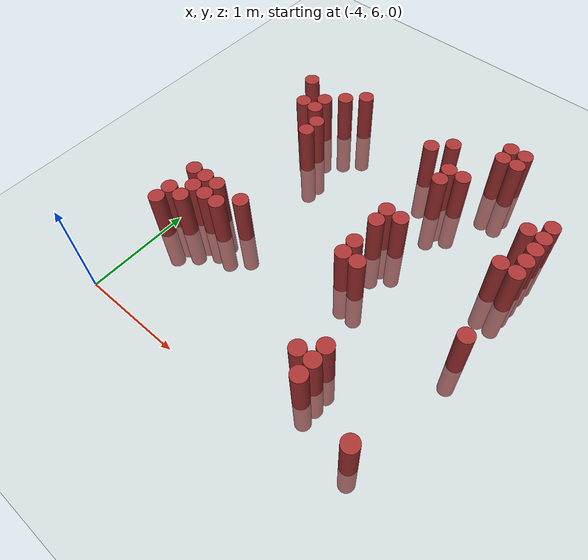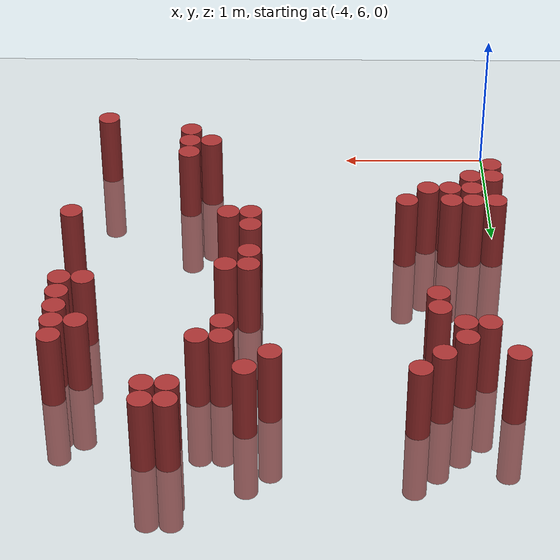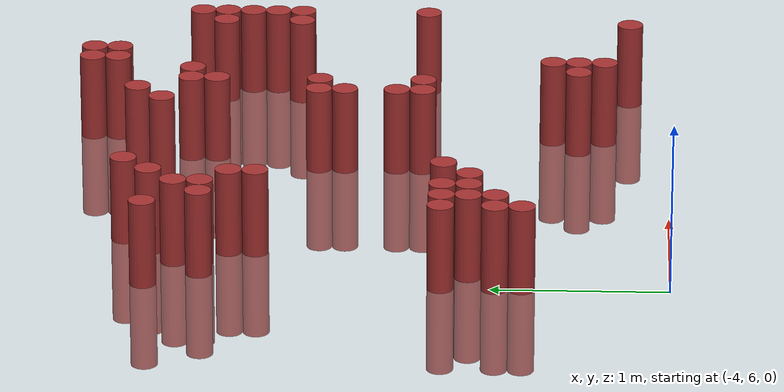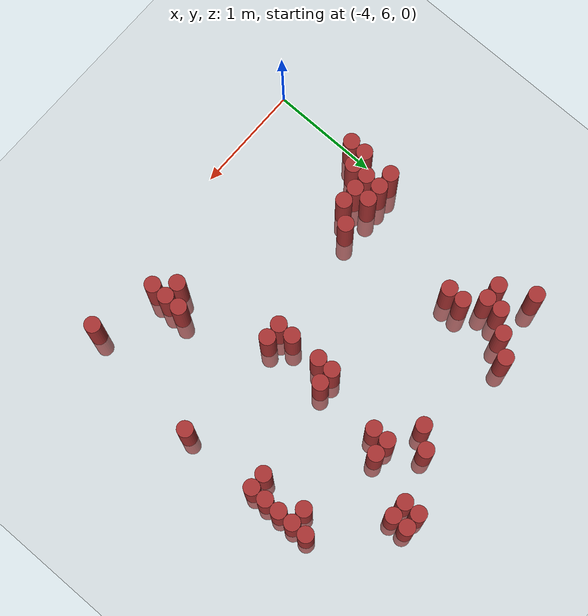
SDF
<sdf version="1.6">
 <world name="world_213">
  <model name="ground_plane">
   <static>1</static>
   <link name="link">
    <collision name="collision">
     <geometry><plane><normal>0 0 1</normal><size>100 100</size></plane></geometry>
     <surface><friction><ode><mu>100</mu><mu2>50</mu2></ode></friction></surface>
    </collision>
    <visual name="visual">
     <cast_shadows>0</cast_shadows>
     <geometry><plane><normal>0 0 1</normal><size>100 100</size></plane></geometry>
     <material>
      <script><uri>file://media/materials/scripts/gazebo.material</uri><name>Gazebo/Grey</name></script>
     </material>
    </visual>
   </link>
  </model>
  <model name="unit_cylinder_153">
   <static>1</static>
   <pose>-3.975000 6.825000 0.000000 0.000000 0.000000 0.000000</pose>
   <link name="link">
    <inertial>
     <mass>1</mass>
     <inertia><ixx>0.145833</ixx><ixy>0</ixy><ixz>0</ixz><iyy>0.145833</iyy><iyz>0</iyz><izz>0.125</izz></inertia>
    </inertial>
    <collision name="collision">
     <geometry><cylinder><radius>0.075000</radius><length>1</length></cylinder></geometry>
    </collision>
    <visual name="visual">
     <geometry><cylinder><radius>0.075000</radius><length>1</length></cylinder></geometry>
     <material>
      <ambient>0.648000 0.192000 0.192000 1</ambient>
      <diffuse>0.648000 0.192000 0.192000 1</diffuse>
     </material>
     <material>
      <script><name>Gazebo/Grey</name><uri>file://media/materials/scripts/gazebo.material</uri></script>
     </material>
    </visual>
   </link>
  </model>
  <model name="unit_cylinder_154">
   <static>1</static>
   <pose>-3.975000 6.975000 0.000000 0.000000 0.000000 0.000000</pose>
   <link name="link">
    <inertial>
     <mass>1</mass>
     <inertia><ixx>0.145833</ixx><ixy>0</ixy><ixz>0</ixz><iyy>0.145833</iyy><iyz>0</iyz><izz>0.125</izz></inertia>
    </inertial>
    <collision name="collision">
     <geometry><cylinder><radius>0.075000</radius><length>1</length></cylinder></geometry>
    </collision>
    <visual name="visual">
     <geometry><cylinder><radius>0.075000</radius><length>1</length></cylinder></geometry>
     <material>
      <ambient>0.648000 0.192000 0.192000 1</ambient>
      <diffuse>0.648000 0.192000 0.192000 1</diffuse>
     </material>
     <material>
      <script><name>Gazebo/Grey</name><uri>file://media/materials/scripts/gazebo.material</uri></script>
     </material>
    </visual>
   </link>
  </model>
  <model name="unit_cylinder_155">
   <static>1</static>
   <pose>-3.975000 7.275000 0.000000 0.000000 0.000000 0.000000</pose>
   <link name="link">
    <inertial>
     <mass>1</mass>
     <inertia><ixx>0.145833</ixx><ixy>0</ixy><ixz>0</ixz><iyy>0.145833</iyy><iyz>0</iyz><izz>0.125</izz></inertia>
    </inertial>
    <collision name="collision">
     <geometry><cylinder><radius>0.075000</radius><length>1</length></cylinder></geometry>
    </collision>
    <visual name="visual">
     <geometry><cylinder><radius>0.075000</radius><length>1</length></cylinder></geometry>
     <material>
      <ambient>0.648000 0.192000 0.192000 1</ambient>
      <diffuse>0.648000 0.192000 0.192000 1</diffuse>
     </material>
     <material>
      <script><name>Gazebo/Grey</name><uri>file://media/materials/scripts/gazebo.material</uri></script>
     </material>
    </visual>
   </link>
  </model>
  <model name="unit_cylinder_156">
   <static>1</static>
   <pose>-3.975000 8.925000 0.000000 0.000000 0.000000 0.000000</pose>
   <link name="link">
    <inertial>
     <mass>1</mass>
     <inertia><ixx>0.145833</ixx><ixy>0</ixy><ixz>0</ixz><iyy>0.145833</iyy><iyz>0</iyz><izz>0.125</izz></inertia>
    </inertial>
    <collision name="collision">
     <geometry><cylinder><radius>0.075000</radius><length>1</length></cylinder></geometry>
    </collision>
    <visual name="visual">
     <geometry><cylinder><radius>0.075000</radius><length>1</length></cylinder></geometry>
     <material>
      <ambient>0.648000 0.192000 0.192000 1</ambient>
      <diffuse>0.648000 0.192000 0.192000 1</diffuse>
     </material>
     <material>
      <script><name>Gazebo/Grey</name><uri>file://media/materials/scripts/gazebo.material</uri></script>
     </material>
    </visual>
   </link>
  </model>
  <model name="unit_cylinder_158">
   <static>1</static>
   <pose>-3.825000 6.975000 0.000000 0.000000 0.000000 0.000000</pose>
   <link name="link">
    <inertial>
     <mass>1</mass>
     <inertia><ixx>0.145833</ixx><ixy>0</ixy><ixz>0</ixz><iyy>0.145833</iyy><iyz>0</iyz><izz>0.125</izz></inertia>
    </inertial>
    <collision name="collision">
     <geometry><cylinder><radius>0.075000</radius><length>1</length></cylinder></geometry>
    </collision>
    <visual name="visual">
     <geometry><cylinder><radius>0.075000</radius><length>1</length></cylinder></geometry>
     <material>
      <ambient>0.648000 0.192000 0.192000 1</ambient>
      <diffuse>0.648000 0.192000 0.192000 1</diffuse>
     </material>
     <material>
      <script><name>Gazebo/Grey</name><uri>file://media/materials/scripts/gazebo.material</uri></script>
     </material>
    </visual>
   </link>
  </model>
  <model name="unit_cylinder_159">
   <static>1</static>
   <pose>-3.825000 7.125000 0.000000 0.000000 0.000000 0.000000</pose>
   <link name="link">
    <inertial>
     <mass>1</mass>
     <inertia><ixx>0.145833</ixx><ixy>0</ixy><ixz>0</ixz><iyy>0.145833</iyy><iyz>0</iyz><izz>0.125</izz></inertia>
    </inertial>
    <collision name="collision">
     <geometry><cylinder><radius>0.075000</radius><length>1</length></cylinder></geometry>
    </collision>
    <visual name="visual">
     <geometry><cylinder><radius>0.075000</radius><length>1</length></cylinder></geometry>
     <material>
      <ambient>0.648000 0.192000 0.192000 1</ambient>
      <diffuse>0.648000 0.192000 0.192000 1</diffuse>
     </material>
     <material>
      <script><name>Gazebo/Grey</name><uri>file://media/materials/scripts/gazebo.material</uri></script>
     </material>
    </visual>
   </link>
  </model>
  <model name="unit_cylinder_160">
   <static>1</static>
   <pose>-3.825000 7.275000 0.000000 0.000000 0.000000 0.000000</pose>
   <link name="link">
    <inertial>
     <mass>1</mass>
     <inertia><ixx>0.145833</ixx><ixy>0</ixy><ixz>0</ixz><iyy>0.145833</iyy><iyz>0</iyz><izz>0.125</izz></inertia>
    </inertial>
    <collision name="collision">
     <geometry><cylinder><radius>0.075000</radius><length>1</length></cylinder></geometry>
    </collision>
    <visual name="visual">
     <geometry><cylinder><radius>0.075000</radius><length>1</length></cylinder></geometry>
     <material>
      <ambient>0.648000 0.192000 0.192000 1</ambient>
      <diffuse>0.648000 0.192000 0.192000 1</diffuse>
     </material>
     <material>
      <script><name>Gazebo/Grey</name><uri>file://media/materials/scripts/gazebo.material</uri></script>
     </material>
    </visual>
   </link>
  </model>
  <model name="unit_cylinder_161">
   <static>1</static>
   <pose>-3.825000 8.625000 0.000000 0.000000 0.000000 0.000000</pose>
   <link name="link">
    <inertial>
     <mass>1</mass>
     <inertia><ixx>0.145833</ixx><ixy>0</ixy><ixz>0</ixz><iyy>0.145833</iyy><iyz>0</iyz><izz>0.125</izz></inertia>
    </inertial>
    <collision name="collision">
     <geometry><cylinder><radius>0.075000</radius><length>1</length></cylinder></geometry>
    </collision>
    <visual name="visual">
     <geometry><cylinder><radius>0.075000</radius><length>1</length></cylinder></geometry>
     <material>
      <ambient>0.648000 0.192000 0.192000 1</ambient>
      <diffuse>0.648000 0.192000 0.192000 1</diffuse>
     </material>
     <material>
      <script><name>Gazebo/Grey</name><uri>file://media/materials/scripts/gazebo.material</uri></script>
     </material>
    </visual>
   </link>
  </model>
  <model name="unit_cylinder_163">
   <static>1</static>
   <pose>-3.675000 7.125000 0.000000 0.000000 0.000000 0.000000</pose>
   <link name="link">
    <inertial>
     <mass>1</mass>
     <inertia><ixx>0.145833</ixx><ixy>0</ixy><ixz>0</ixz><iyy>0.145833</iyy><iyz>0</iyz><izz>0.125</izz></inertia>
    </inertial>
    <collision name="collision">
     <geometry><cylinder><radius>0.075000</radius><length>1</length></cylinder></geometry>
    </collision>
    <visual name="visual">
     <geometry><cylinder><radius>0.075000</radius><length>1</length></cylinder></geometry>
     <material>
      <ambient>0.648000 0.192000 0.192000 1</ambient>
      <diffuse>0.648000 0.192000 0.192000 1</diffuse>
     </material>
     <material>
      <script><name>Gazebo/Grey</name><uri>file://media/materials/scripts/gazebo.material</uri></script>
     </material>
    </visual>
   </link>
  </model>
  <model name="unit_cylinder_164">
   <static>1</static>
   <pose>-3.675000 7.275000 0.000000 0.000000 0.000000 0.000000</pose>
   <link name="link">
    <inertial>
     <mass>1</mass>
     <inertia><ixx>0.145833</ixx><ixy>0</ixy><ixz>0</ixz><iyy>0.145833</iyy><iyz>0</iyz><izz>0.125</izz></inertia>
    </inertial>
    <collision name="collision">
     <geometry><cylinder><radius>0.075000</radius><length>1</length></cylinder></geometry>
    </collision>
    <visual name="visual">
     <geometry><cylinder><radius>0.075000</radius><length>1</length></cylinder></geometry>
     <material>
      <ambient>0.648000 0.192000 0.192000 1</ambient>
      <diffuse>0.648000 0.192000 0.192000 1</diffuse>
     </material>
     <material>
      <script><name>Gazebo/Grey</name><uri>file://media/materials/scripts/gazebo.material</uri></script>
     </material>
    </visual>
   </link>
  </model>
  <model name="unit_cylinder_165">
   <static>1</static>
   <pose>-3.675000 8.625000 0.000000 0.000000 0.000000 0.000000</pose>
   <link name="link">
    <inertial>
     <mass>1</mass>
     <inertia><ixx>0.145833</ixx><ixy>0</ixy><ixz>0</ixz><iyy>0.145833</iyy><iyz>0</iyz><izz>0.125</izz></inertia>
    </inertial>
    <collision name="collision">
     <geometry><cylinder><radius>0.075000</radius><length>1</length></cylinder></geometry>
    </collision>
    <visual name="visual">
     <geometry><cylinder><radius>0.075000</radius><length>1</length></cylinder></geometry>
     <material>
      <ambient>0.648000 0.192000 0.192000 1</ambient>
      <diffuse>0.648000 0.192000 0.192000 1</diffuse>
     </material>
     <material>
      <script><name>Gazebo/Grey</name><uri>file://media/materials/scripts/gazebo.material</uri></script>
     </material>
    </visual>
   </link>
  </model>
  <model name="unit_cylinder_166">
   <static>1</static>
   <pose>-3.675000 8.775000 0.000000 0.000000 0.000000 0.000000</pose>
   <link name="link">
    <inertial>
     <mass>1</mass>
     <inertia><ixx>0.145833</ixx><ixy>0</ixy><ixz>0</ixz><iyy>0.145833</iyy><iyz>0</iyz><izz>0.125</izz></inertia>
    </inertial>
    <collision name="collision">
     <geometry><cylinder><radius>0.075000</radius><length>1</length></cylinder></geometry>
    </collision>
    <visual name="visual">
     <geometry><cylinder><radius>0.075000</radius><length>1</length></cylinder></geometry>
     <material>
      <ambient>0.648000 0.192000 0.192000 1</ambient>
      <diffuse>0.648000 0.192000 0.192000 1</diffuse>
     </material>
     <material>
      <script><name>Gazebo/Grey</name><uri>file://media/materials/scripts/gazebo.material</uri></script>
     </material>
    </visual>
   </link>
  </model>
  <model name="unit_cylinder_167">
   <static>1</static>
   <pose>-3.525000 7.125000 0.000000 0.000000 0.000000 0.000000</pose>
   <link name="link">
    <inertial>
     <mass>1</mass>
     <inertia><ixx>0.145833</ixx><ixy>0</ixy><ixz>0</ixz><iyy>0.145833</iyy><iyz>0</iyz><izz>0.125</izz></inertia>
    </inertial>
    <collision name="collision">
     <geometry><cylinder><radius>0.075000</radius><length>1</length></cylinder></geometry>
    </collision>
    <visual name="visual">
     <geometry><cylinder><radius>0.075000</radius><length>1</length></cylinder></geometry>
     <material>
      <ambient>0.648000 0.192000 0.192000 1</ambient>
      <diffuse>0.648000 0.192000 0.192000 1</diffuse>
     </material>
     <material>
      <script><name>Gazebo/Grey</name><uri>file://media/materials/scripts/gazebo.material</uri></script>
     </material>
    </visual>
   </link>
  </model>
  <model name="unit_cylinder_168">
   <static>1</static>
   <pose>-3.525000 8.325000 0.000000 0.000000 0.000000 0.000000</pose>
   <link name="link">
    <inertial>
     <mass>1</mass>
     <inertia><ixx>0.145833</ixx><ixy>0</ixy><ixz>0</ixz><iyy>0.145833</iyy><iyz>0</iyz><izz>0.125</izz></inertia>
    </inertial>
    <collision name="collision">
     <geometry><cylinder><radius>0.075000</radius><length>1</length></cylinder></geometry>
    </collision>
    <visual name="visual">
     <geometry><cylinder><radius>0.075000</radius><length>1</length></cylinder></geometry>
     <material>
      <ambient>0.648000 0.192000 0.192000 1</ambient>
      <diffuse>0.648000 0.192000 0.192000 1</diffuse>
     </material>
     <material>
      <script><name>Gazebo/Grey</name><uri>file://media/materials/scripts/gazebo.material</uri></script>
     </material>
    </visual>
   </link>
  </model>
  <model name="unit_cylinder_169">
   <static>1</static>
   <pose>-3.525000 8.475000 0.000000 0.000000 0.000000 0.000000</pose>
   <link name="link">
    <inertial>
     <mass>1</mass>
     <inertia><ixx>0.145833</ixx><ixy>0</ixy><ixz>0</ixz><iyy>0.145833</iyy><iyz>0</iyz><izz>0.125</izz></inertia>
    </inertial>
    <collision name="collision">
     <geometry><cylinder><radius>0.075000</radius><length>1</length></cylinder></geometry>
    </collision>
    <visual name="visual">
     <geometry><cylinder><radius>0.075000</radius><length>1</length></cylinder></geometry>
     <material>
      <ambient>0.648000 0.192000 0.192000 1</ambient>
      <diffuse>0.648000 0.192000 0.192000 1</diffuse>
     </material>
     <material>
      <script><name>Gazebo/Grey</name><uri>file://media/materials/scripts/gazebo.material</uri></script>
     </material>
    </visual>
   </link>
  </model>
  <model name="unit_cylinder_170">
   <static>1</static>
   <pose>-3.525000 8.925000 0.000000 0.000000 0.000000 0.000000</pose>
   <link name="link">
    <inertial>
     <mass>1</mass>
     <inertia><ixx>0.145833</ixx><ixy>0</ixy><ixz>0</ixz><iyy>0.145833</iyy><iyz>0</iyz><izz>0.125</izz></inertia>
    </inertial>
    <collision name="collision">
     <geometry><cylinder><radius>0.075000</radius><length>1</length></cylinder></geometry>
    </collision>
    <visual name="visual">
     <geometry><cylinder><radius>0.075000</radius><length>1</length></cylinder></geometry>
     <material>
      <ambient>0.648000 0.192000 0.192000 1</ambient>
      <diffuse>0.648000 0.192000 0.192000 1</diffuse>
     </material>
     <material>
      <script><name>Gazebo/Grey</name><uri>file://media/materials/scripts/gazebo.material</uri></script>
     </material>
    </visual>
   </link>
  </model>
  <model name="unit_cylinder_171">
   <static>1</static>
   <pose>-3.375000 7.275000 0.000000 0.000000 0.000000 0.000000</pose>
   <link name="link">
    <inertial>
     <mass>1</mass>
     <inertia><ixx>0.145833</ixx><ixy>0</ixy><ixz>0</ixz><iyy>0.145833</iyy><iyz>0</iyz><izz>0.125</izz></inertia>
    </inertial>
    <collision name="collision">
     <geometry><cylinder><radius>0.075000</radius><length>1</length></cylinder></geometry>
    </collision>
    <visual name="visual">
     <geometry><cylinder><radius>0.075000</radius><length>1</length></cylinder></geometry>
     <material>
      <ambient>0.648000 0.192000 0.192000 1</ambient>
      <diffuse>0.648000 0.192000 0.192000 1</diffuse>
     </material>
     <material>
      <script><name>Gazebo/Grey</name><uri>file://media/materials/scripts/gazebo.material</uri></script>
     </material>
    </visual>
   </link>
  </model>
  <model name="unit_cylinder_172">
   <static>1</static>
   <pose>-3.375000 9.075000 0.000000 0.000000 0.000000 0.000000</pose>
   <link name="link">
    <inertial>
     <mass>1</mass>
     <inertia><ixx>0.145833</ixx><ixy>0</ixy><ixz>0</ixz><iyy>0.145833</iyy><iyz>0</iyz><izz>0.125</izz></inertia>
    </inertial>
    <collision name="collision">
     <geometry><cylinder><radius>0.075000</radius><length>1</length></cylinder></geometry>
    </collision>
    <visual name="visual">
     <geometry><cylinder><radius>0.075000</radius><length>1</length></cylinder></geometry>
     <material>
      <ambient>0.648000 0.192000 0.192000 1</ambient>
      <diffuse>0.648000 0.192000 0.192000 1</diffuse>
     </material>
     <material>
      <script><name>Gazebo/Grey</name><uri>file://media/materials/scripts/gazebo.material</uri></script>
     </material>
    </visual>
   </link>
  </model>
  <model name="unit_cylinder_182">
   <static>1</static>
   <pose>-2.475000 8.925000 0.000000 0.000000 0.000000 0.000000</pose>
   <link name="link">
    <inertial>
     <mass>1</mass>
     <inertia><ixx>0.145833</ixx><ixy>0</ixy><ixz>0</ixz><iyy>0.145833</iyy><iyz>0</iyz><izz>0.125</izz></inertia>
    </inertial>
    <collision name="collision">
     <geometry><cylinder><radius>0.075000</radius><length>1</length></cylinder></geometry>
    </collision>
    <visual name="visual">
     <geometry><cylinder><radius>0.075000</radius><length>1</length></cylinder></geometry>
     <material>
      <ambient>0.648000 0.192000 0.192000 1</ambient>
      <diffuse>0.648000 0.192000 0.192000 1</diffuse>
     </material>
     <material>
      <script><name>Gazebo/Grey</name><uri>file://media/materials/scripts/gazebo.material</uri></script>
     </material>
    </visual>
   </link>
  </model>
  <model name="unit_cylinder_183">
   <static>1</static>
   <pose>-2.325000 7.425000 0.000000 0.000000 0.000000 0.000000</pose>
   <link name="link">
    <inertial>
     <mass>1</mass>
     <inertia><ixx>0.145833</ixx><ixy>0</ixy><ixz>0</ixz><iyy>0.145833</iyy><iyz>0</iyz><izz>0.125</izz></inertia>
    </inertial>
    <collision name="collision">
     <geometry><cylinder><radius>0.075000</radius><length>1</length></cylinder></geometry>
    </collision>
    <visual name="visual">
     <geometry><cylinder><radius>0.075000</radius><length>1</length></cylinder></geometry>
     <material>
      <ambient>0.648000 0.192000 0.192000 1</ambient>
      <diffuse>0.648000 0.192000 0.192000 1</diffuse>
     </material>
     <material>
      <script><name>Gazebo/Grey</name><uri>file://media/materials/scripts/gazebo.material</uri></script>
     </material>
    </visual>
   </link>
  </model>
  <model name="unit_cylinder_184">
   <static>1</static>
   <pose>-2.325000 7.575000 0.000000 0.000000 0.000000 0.000000</pose>
   <link name="link">
    <inertial>
     <mass>1</mass>
     <inertia><ixx>0.145833</ixx><ixy>0</ixy><ixz>0</ixz><iyy>0.145833</iyy><iyz>0</iyz><izz>0.125</izz></inertia>
    </inertial>
    <collision name="collision">
     <geometry><cylinder><radius>0.075000</radius><length>1</length></cylinder></geometry>
    </collision>
    <visual name="visual">
     <geometry><cylinder><radius>0.075000</radius><length>1</length></cylinder></geometry>
     <material>
      <ambient>0.648000 0.192000 0.192000 1</ambient>
      <diffuse>0.648000 0.192000 0.192000 1</diffuse>
     </material>
     <material>
      <script><name>Gazebo/Grey</name><uri>file://media/materials/scripts/gazebo.material</uri></script>
     </material>
    </visual>
   </link>
  </model>
  <model name="unit_cylinder_185">
   <static>1</static>
   <pose>-2.325000 7.875000 0.000000 0.000000 0.000000 0.000000</pose>
   <link name="link">
    <inertial>
     <mass>1</mass>
     <inertia><ixx>0.145833</ixx><ixy>0</ixy><ixz>0</ixz><iyy>0.145833</iyy><iyz>0</iyz><izz>0.125</izz></inertia>
    </inertial>
    <collision name="collision">
     <geometry><cylinder><radius>0.075000</radius><length>1</length></cylinder></geometry>
    </collision>
    <visual name="visual">
     <geometry><cylinder><radius>0.075000</radius><length>1</length></cylinder></geometry>
     <material>
      <ambient>0.648000 0.192000 0.192000 1</ambient>
      <diffuse>0.648000 0.192000 0.192000 1</diffuse>
     </material>
     <material>
      <script><name>Gazebo/Grey</name><uri>file://media/materials/scripts/gazebo.material</uri></script>
     </material>
    </visual>
   </link>
  </model>
  <model name="unit_cylinder_186">
   <static>1</static>
   <pose>-2.325000 8.025000 0.000000 0.000000 0.000000 0.000000</pose>
   <link name="link">
    <inertial>
     <mass>1</mass>
     <inertia><ixx>0.145833</ixx><ixy>0</ixy><ixz>0</ixz><iyy>0.145833</iyy><iyz>0</iyz><izz>0.125</izz></inertia>
    </inertial>
    <collision name="collision">
     <geometry><cylinder><radius>0.075000</radius><length>1</length></cylinder></geometry>
    </collision>
    <visual name="visual">
     <geometry><cylinder><radius>0.075000</radius><length>1</length></cylinder></geometry>
     <material>
      <ambient>0.648000 0.192000 0.192000 1</ambient>
      <diffuse>0.648000 0.192000 0.192000 1</diffuse>
     </material>
     <material>
      <script><name>Gazebo/Grey</name><uri>file://media/materials/scripts/gazebo.material</uri></script>
     </material>
    </visual>
   </link>
  </model>
  <model name="unit_cylinder_187">
   <static>1</static>
   <pose>-2.325000 9.075000 0.000000 0.000000 0.000000 0.000000</pose>
   <link name="link">
    <inertial>
     <mass>1</mass>
     <inertia><ixx>0.145833</ixx><ixy>0</ixy><ixz>0</ixz><iyy>0.145833</iyy><iyz>0</iyz><izz>0.125</izz></inertia>
    </inertial>
    <collision name="collision">
     <geometry><cylinder><radius>0.075000</radius><length>1</length></cylinder></geometry>
    </collision>
    <visual name="visual">
     <geometry><cylinder><radius>0.075000</radius><length>1</length></cylinder></geometry>
     <material>
      <ambient>0.648000 0.192000 0.192000 1</ambient>
      <diffuse>0.648000 0.192000 0.192000 1</diffuse>
     </material>
     <material>
      <script><name>Gazebo/Grey</name><uri>file://media/materials/scripts/gazebo.material</uri></script>
     </material>
    </visual>
   </link>
  </model>
  <model name="unit_cylinder_188">
   <static>1</static>
   <pose>-2.175000 7.425000 0.000000 0.000000 0.000000 0.000000</pose>
   <link name="link">
    <inertial>
     <mass>1</mass>
     <inertia><ixx>0.145833</ixx><ixy>0</ixy><ixz>0</ixz><iyy>0.145833</iyy><iyz>0</iyz><izz>0.125</izz></inertia>
    </inertial>
    <collision name="collision">
     <geometry><cylinder><radius>0.075000</radius><length>1</length></cylinder></geometry>
    </collision>
    <visual name="visual">
     <geometry><cylinder><radius>0.075000</radius><length>1</length></cylinder></geometry>
     <material>
      <ambient>0.648000 0.192000 0.192000 1</ambient>
      <diffuse>0.648000 0.192000 0.192000 1</diffuse>
     </material>
     <material>
      <script><name>Gazebo/Grey</name><uri>file://media/materials/scripts/gazebo.material</uri></script>
     </material>
    </visual>
   </link>
  </model>
  <model name="unit_cylinder_189">
   <static>1</static>
   <pose>-2.175000 8.025000 0.000000 0.000000 0.000000 0.000000</pose>
   <link name="link">
    <inertial>
     <mass>1</mass>
     <inertia><ixx>0.145833</ixx><ixy>0</ixy><ixz>0</ixz><iyy>0.145833</iyy><iyz>0</iyz><izz>0.125</izz></inertia>
    </inertial>
    <collision name="collision">
     <geometry><cylinder><radius>0.075000</radius><length>1</length></cylinder></geometry>
    </collision>
    <visual name="visual">
     <geometry><cylinder><radius>0.075000</radius><length>1</length></cylinder></geometry>
     <material>
      <ambient>0.648000 0.192000 0.192000 1</ambient>
      <diffuse>0.648000 0.192000 0.192000 1</diffuse>
     </material>
     <material>
      <script><name>Gazebo/Grey</name><uri>file://media/materials/scripts/gazebo.material</uri></script>
     </material>
    </visual>
   </link>
  </model>
  <model name="unit_cylinder_190">
   <static>1</static>
   <pose>-2.175000 8.625000 0.000000 0.000000 0.000000 0.000000</pose>
   <link name="link">
    <inertial>
     <mass>1</mass>
     <inertia><ixx>0.145833</ixx><ixy>0</ixy><ixz>0</ixz><iyy>0.145833</iyy><iyz>0</iyz><izz>0.125</izz></inertia>
    </inertial>
    <collision name="collision">
     <geometry><cylinder><radius>0.075000</radius><length>1</length></cylinder></geometry>
    </collision>
    <visual name="visual">
     <geometry><cylinder><radius>0.075000</radius><length>1</length></cylinder></geometry>
     <material>
      <ambient>0.648000 0.192000 0.192000 1</ambient>
      <diffuse>0.648000 0.192000 0.192000 1</diffuse>
     </material>
     <material>
      <script><name>Gazebo/Grey</name><uri>file://media/materials/scripts/gazebo.material</uri></script>
     </material>
    </visual>
   </link>
  </model>
  <model name="unit_cylinder_191">
   <static>1</static>
   <pose>-2.175000 8.775000 0.000000 0.000000 0.000000 0.000000</pose>
   <link name="link">
    <inertial>
     <mass>1</mass>
     <inertia><ixx>0.145833</ixx><ixy>0</ixy><ixz>0</ixz><iyy>0.145833</iyy><iyz>0</iyz><izz>0.125</izz></inertia>
    </inertial>
    <collision name="collision">
     <geometry><cylinder><radius>0.075000</radius><length>1</length></cylinder></geometry>
    </collision>
    <visual name="visual">
     <geometry><cylinder><radius>0.075000</radius><length>1</length></cylinder></geometry>
     <material>
      <ambient>0.648000 0.192000 0.192000 1</ambient>
      <diffuse>0.648000 0.192000 0.192000 1</diffuse>
     </material>
     <material>
      <script><name>Gazebo/Grey</name><uri>file://media/materials/scripts/gazebo.material</uri></script>
     </material>
    </visual>
   </link>
  </model>
  <model name="unit_cylinder_192">
   <static>1</static>
   <pose>-2.025000 6.525000 0.000000 0.000000 0.000000 0.000000</pose>
   <link name="link">
    <inertial>
     <mass>1</mass>
     <inertia><ixx>0.145833</ixx><ixy>0</ixy><ixz>0</ixz><iyy>0.145833</iyy><iyz>0</iyz><izz>0.125</izz></inertia>
    </inertial>
    <collision name="collision">
     <geometry><cylinder><radius>0.075000</radius><length>1</length></cylinder></geometry>
    </collision>
    <visual name="visual">
     <geometry><cylinder><radius>0.075000</radius><length>1</length></cylinder></geometry>
     <material>
      <ambient>0.648000 0.192000 0.192000 1</ambient>
      <diffuse>0.648000 0.192000 0.192000 1</diffuse>
     </material>
     <material>
      <script><name>Gazebo/Grey</name><uri>file://media/materials/scripts/gazebo.material</uri></script>
     </material>
    </visual>
   </link>
  </model>
  <model name="unit_cylinder_193">
   <static>1</static>
   <pose>-2.025000 8.775000 0.000000 0.000000 0.000000 0.000000</pose>
   <link name="link">
    <inertial>
     <mass>1</mass>
     <inertia><ixx>0.145833</ixx><ixy>0</ixy><ixz>0</ixz><iyy>0.145833</iyy><iyz>0</iyz><izz>0.125</izz></inertia>
    </inertial>
    <collision name="collision">
     <geometry><cylinder><radius>0.075000</radius><length>1</length></cylinder></geometry>
    </collision>
    <visual name="visual">
     <geometry><cylinder><radius>0.075000</radius><length>1</length></cylinder></geometry>
     <material>
      <ambient>0.648000 0.192000 0.192000 1</ambient>
      <diffuse>0.648000 0.192000 0.192000 1</diffuse>
     </material>
     <material>
      <script><name>Gazebo/Grey</name><uri>file://media/materials/scripts/gazebo.material</uri></script>
     </material>
    </visual>
   </link>
  </model>
  <model name="unit_cylinder_194">
   <static>1</static>
   <pose>-1.875000 6.375000 0.000000 0.000000 0.000000 0.000000</pose>
   <link name="link">
    <inertial>
     <mass>1</mass>
     <inertia><ixx>0.145833</ixx><ixy>0</ixy><ixz>0</ixz><iyy>0.145833</iyy><iyz>0</iyz><izz>0.125</izz></inertia>
    </inertial>
    <collision name="collision">
     <geometry><cylinder><radius>0.075000</radius><length>1</length></cylinder></geometry>
    </collision>
    <visual name="visual">
     <geometry><cylinder><radius>0.075000</radius><length>1</length></cylinder></geometry>
     <material>
      <ambient>0.648000 0.192000 0.192000 1</ambient>
      <diffuse>0.648000 0.192000 0.192000 1</diffuse>
     </material>
     <material>
      <script><name>Gazebo/Grey</name><uri>file://media/materials/scripts/gazebo.material</uri></script>
     </material>
    </visual>
   </link>
  </model>
  <model name="unit_cylinder_195">
   <static>1</static>
   <pose>-1.875000 6.525000 0.000000 0.000000 0.000000 0.000000</pose>
   <link name="link">
    <inertial>
     <mass>1</mass>
     <inertia><ixx>0.145833</ixx><ixy>0</ixy><ixz>0</ixz><iyy>0.145833</iyy><iyz>0</iyz><izz>0.125</izz></inertia>
    </inertial>
    <collision name="collision">
     <geometry><cylinder><radius>0.075000</radius><length>1</length></cylinder></geometry>
    </collision>
    <visual name="visual">
     <geometry><cylinder><radius>0.075000</radius><length>1</length></cylinder></geometry>
     <material>
      <ambient>0.648000 0.192000 0.192000 1</ambient>
      <diffuse>0.648000 0.192000 0.192000 1</diffuse>
     </material>
     <material>
      <script><name>Gazebo/Grey</name><uri>file://media/materials/scripts/gazebo.material</uri></script>
     </material>
    </visual>
   </link>
  </model>
  <model name="unit_cylinder_196">
   <static>1</static>
   <pose>-1.875000 6.675000 0.000000 0.000000 0.000000 0.000000</pose>
   <link name="link">
    <inertial>
     <mass>1</mass>
     <inertia><ixx>0.145833</ixx><ixy>0</ixy><ixz>0</ixz><iyy>0.145833</iyy><iyz>0</iyz><izz>0.125</izz></inertia>
    </inertial>
    <collision name="collision">
     <geometry><cylinder><radius>0.075000</radius><length>1</length></cylinder></geometry>
    </collision>
    <visual name="visual">
     <geometry><cylinder><radius>0.075000</radius><length>1</length></cylinder></geometry>
     <material>
      <ambient>0.648000 0.192000 0.192000 1</ambient>
      <diffuse>0.648000 0.192000 0.192000 1</diffuse>
     </material>
     <material>
      <script><name>Gazebo/Grey</name><uri>file://media/materials/scripts/gazebo.material</uri></script>
     </material>
    </visual>
   </link>
  </model>
  <model name="unit_cylinder_197">
   <static>1</static>
   <pose>-1.875000 9.225000 0.000000 0.000000 0.000000 0.000000</pose>
   <link name="link">
    <inertial>
     <mass>1</mass>
     <inertia><ixx>0.145833</ixx><ixy>0</ixy><ixz>0</ixz><iyy>0.145833</iyy><iyz>0</iyz><izz>0.125</izz></inertia>
    </inertial>
    <collision name="collision">
     <geometry><cylinder><radius>0.075000</radius><length>1</length></cylinder></geometry>
    </collision>
    <visual name="visual">
     <geometry><cylinder><radius>0.075000</radius><length>1</length></cylinder></geometry>
     <material>
      <ambient>0.648000 0.192000 0.192000 1</ambient>
      <diffuse>0.648000 0.192000 0.192000 1</diffuse>
     </material>
     <material>
      <script><name>Gazebo/Grey</name><uri>file://media/materials/scripts/gazebo.material</uri></script>
     </material>
    </visual>
   </link>
  </model>
  <model name="unit_cylinder_198">
   <static>1</static>
   <pose>-1.875000 9.375000 0.000000 0.000000 0.000000 0.000000</pose>
   <link name="link">
    <inertial>
     <mass>1</mass>
     <inertia><ixx>0.145833</ixx><ixy>0</ixy><ixz>0</ixz><iyy>0.145833</iyy><iyz>0</iyz><izz>0.125</izz></inertia>
    </inertial>
    <collision name="collision">
     <geometry><cylinder><radius>0.075000</radius><length>1</length></cylinder></geometry>
    </collision>
    <visual name="visual">
     <geometry><cylinder><radius>0.075000</radius><length>1</length></cylinder></geometry>
     <material>
      <ambient>0.648000 0.192000 0.192000 1</ambient>
      <diffuse>0.648000 0.192000 0.192000 1</diffuse>
     </material>
     <material>
      <script><name>Gazebo/Grey</name><uri>file://media/materials/scripts/gazebo.material</uri></script>
     </material>
    </visual>
   </link>
  </model>
  <model name="unit_cylinder_199">
   <static>1</static>
   <pose>-1.725000 9.225000 0.000000 0.000000 0.000000 0.000000</pose>
   <link name="link">
    <inertial>
     <mass>1</mass>
     <inertia><ixx>0.145833</ixx><ixy>0</ixy><ixz>0</ixz><iyy>0.145833</iyy><iyz>0</iyz><izz>0.125</izz></inertia>
    </inertial>
    <collision name="collision">
     <geometry><cylinder><radius>0.075000</radius><length>1</length></cylinder></geometry>
    </collision>
    <visual name="visual">
     <geometry><cylinder><radius>0.075000</radius><length>1</length></cylinder></geometry>
     <material>
      <ambient>0.648000 0.192000 0.192000 1</ambient>
      <diffuse>0.648000 0.192000 0.192000 1</diffuse>
     </material>
     <material>
      <script><name>Gazebo/Grey</name><uri>file://media/materials/scripts/gazebo.material</uri></script>
     </material>
    </visual>
   </link>
  </model>
  <model name="unit_cylinder_200">
   <static>1</static>
   <pose>-1.725000 9.375000 0.000000 0.000000 0.000000 0.000000</pose>
   <link name="link">
    <inertial>
     <mass>1</mass>
     <inertia><ixx>0.145833</ixx><ixy>0</ixy><ixz>0</ixz><iyy>0.145833</iyy><iyz>0</iyz><izz>0.125</izz></inertia>
    </inertial>
    <collision name="collision">
     <geometry><cylinder><radius>0.075000</radius><length>1</length></cylinder></geometry>
    </collision>
    <visual name="visual">
     <geometry><cylinder><radius>0.075000</radius><length>1</length></cylinder></geometry>
     <material>
      <ambient>0.648000 0.192000 0.192000 1</ambient>
      <diffuse>0.648000 0.192000 0.192000 1</diffuse>
     </material>
     <material>
      <script><name>Gazebo/Grey</name><uri>file://media/materials/scripts/gazebo.material</uri></script>
     </material>
    </visual>
   </link>
  </model>
  <model name="unit_cylinder_205">
   <static>1</static>
   <pose>-1.275000 6.225000 0.000000 0.000000 0.000000 0.000000</pose>
   <link name="link">
    <inertial>
     <mass>1</mass>
     <inertia><ixx>0.145833</ixx><ixy>0</ixy><ixz>0</ixz><iyy>0.145833</iyy><iyz>0</iyz><izz>0.125</izz></inertia>
    </inertial>
    <collision name="collision">
     <geometry><cylinder><radius>0.075000</radius><length>1</length></cylinder></geometry>
    </collision>
    <visual name="visual">
     <geometry><cylinder><radius>0.075000</radius><length>1</length></cylinder></geometry>
     <material>
      <ambient>0.648000 0.192000 0.192000 1</ambient>
      <diffuse>0.648000 0.192000 0.192000 1</diffuse>
     </material>
     <material>
      <script><name>Gazebo/Grey</name><uri>file://media/materials/scripts/gazebo.material</uri></script>
     </material>
    </visual>
   </link>
  </model>
  <model name="unit_cylinder_206">
   <static>1</static>
   <pose>-1.275000 8.175000 0.000000 0.000000 0.000000 0.000000</pose>
   <link name="link">
    <inertial>
     <mass>1</mass>
     <inertia><ixx>0.145833</ixx><ixy>0</ixy><ixz>0</ixz><iyy>0.145833</iyy><iyz>0</iyz><izz>0.125</izz></inertia>
    </inertial>
    <collision name="collision">
     <geometry><cylinder><radius>0.075000</radius><length>1</length></cylinder></geometry>
    </collision>
    <visual name="visual">
     <geometry><cylinder><radius>0.075000</radius><length>1</length></cylinder></geometry>
     <material>
      <ambient>0.648000 0.192000 0.192000 1</ambient>
      <diffuse>0.648000 0.192000 0.192000 1</diffuse>
     </material>
     <material>
      <script><name>Gazebo/Grey</name><uri>file://media/materials/scripts/gazebo.material</uri></script>
     </material>
    </visual>
   </link>
  </model>
  <model name="unit_cylinder_207">
   <static>1</static>
   <pose>-1.275000 8.625000 0.000000 0.000000 0.000000 0.000000</pose>
   <link name="link">
    <inertial>
     <mass>1</mass>
     <inertia><ixx>0.145833</ixx><ixy>0</ixy><ixz>0</ixz><iyy>0.145833</iyy><iyz>0</iyz><izz>0.125</izz></inertia>
    </inertial>
    <collision name="collision">
     <geometry><cylinder><radius>0.075000</radius><length>1</length></cylinder></geometry>
    </collision>
    <visual name="visual">
     <geometry><cylinder><radius>0.075000</radius><length>1</length></cylinder></geometry>
     <material>
      <ambient>0.648000 0.192000 0.192000 1</ambient>
      <diffuse>0.648000 0.192000 0.192000 1</diffuse>
     </material>
     <material>
      <script><name>Gazebo/Grey</name><uri>file://media/materials/scripts/gazebo.material</uri></script>
     </material>
    </visual>
   </link>
  </model>
  <model name="unit_cylinder_211">
   <static>1</static>
   <pose>-1.125000 7.425000 0.000000 0.000000 0.000000 0.000000</pose>
   <link name="link">
    <inertial>
     <mass>1</mass>
     <inertia><ixx>0.145833</ixx><ixy>0</ixy><ixz>0</ixz><iyy>0.145833</iyy><iyz>0</iyz><izz>0.125</izz></inertia>
    </inertial>
    <collision name="collision">
     <geometry><cylinder><radius>0.075000</radius><length>1</length></cylinder></geometry>
    </collision>
    <visual name="visual">
     <geometry><cylinder><radius>0.075000</radius><length>1</length></cylinder></geometry>
     <material>
      <ambient>0.648000 0.192000 0.192000 1</ambient>
      <diffuse>0.648000 0.192000 0.192000 1</diffuse>
     </material>
     <material>
      <script><name>Gazebo/Grey</name><uri>file://media/materials/scripts/gazebo.material</uri></script>
     </material>
    </visual>
   </link>
  </model>
  <model name="unit_cylinder_212">
   <static>1</static>
   <pose>-1.125000 8.175000 0.000000 0.000000 0.000000 0.000000</pose>
   <link name="link">
    <inertial>
     <mass>1</mass>
     <inertia><ixx>0.145833</ixx><ixy>0</ixy><ixz>0</ixz><iyy>0.145833</iyy><iyz>0</iyz><izz>0.125</izz></inertia>
    </inertial>
    <collision name="collision">
     <geometry><cylinder><radius>0.075000</radius><length>1</length></cylinder></geometry>
    </collision>
    <visual name="visual">
     <geometry><cylinder><radius>0.075000</radius><length>1</length></cylinder></geometry>
     <material>
      <ambient>0.648000 0.192000 0.192000 1</ambient>
      <diffuse>0.648000 0.192000 0.192000 1</diffuse>
     </material>
     <material>
      <script><name>Gazebo/Grey</name><uri>file://media/materials/scripts/gazebo.material</uri></script>
     </material>
    </visual>
   </link>
  </model>
  <model name="unit_cylinder_213">
   <static>1</static>
   <pose>-1.125000 8.325000 0.000000 0.000000 0.000000 0.000000</pose>
   <link name="link">
    <inertial>
     <mass>1</mass>
     <inertia><ixx>0.145833</ixx><ixy>0</ixy><ixz>0</ixz><iyy>0.145833</iyy><iyz>0</iyz><izz>0.125</izz></inertia>
    </inertial>
    <collision name="collision">
     <geometry><cylinder><radius>0.075000</radius><length>1</length></cylinder></geometry>
    </collision>
    <visual name="visual">
     <geometry><cylinder><radius>0.075000</radius><length>1</length></cylinder></geometry>
     <material>
      <ambient>0.648000 0.192000 0.192000 1</ambient>
      <diffuse>0.648000 0.192000 0.192000 1</diffuse>
     </material>
     <material>
      <script><name>Gazebo/Grey</name><uri>file://media/materials/scripts/gazebo.material</uri></script>
     </material>
    </visual>
   </link>
  </model>
  <model name="unit_cylinder_214">
   <static>1</static>
   <pose>-1.125000 8.475000 0.000000 0.000000 0.000000 0.000000</pose>
   <link name="link">
    <inertial>
     <mass>1</mass>
     <inertia><ixx>0.145833</ixx><ixy>0</ixy><ixz>0</ixz><iyy>0.145833</iyy><iyz>0</iyz><izz>0.125</izz></inertia>
    </inertial>
    <collision name="collision">
     <geometry><cylinder><radius>0.075000</radius><length>1</length></cylinder></geometry>
    </collision>
    <visual name="visual">
     <geometry><cylinder><radius>0.075000</radius><length>1</length></cylinder></geometry>
     <material>
      <ambient>0.648000 0.192000 0.192000 1</ambient>
      <diffuse>0.648000 0.192000 0.192000 1</diffuse>
     </material>
     <material>
      <script><name>Gazebo/Grey</name><uri>file://media/materials/scripts/gazebo.material</uri></script>
     </material>
    </visual>
   </link>
  </model>
  <model name="unit_cylinder_215">
   <static>1</static>
   <pose>-1.125000 8.625000 0.000000 0.000000 0.000000 0.000000</pose>
   <link name="link">
    <inertial>
     <mass>1</mass>
     <inertia><ixx>0.145833</ixx><ixy>0</ixy><ixz>0</ixz><iyy>0.145833</iyy><iyz>0</iyz><izz>0.125</izz></inertia>
    </inertial>
    <collision name="collision">
     <geometry><cylinder><radius>0.075000</radius><length>1</length></cylinder></geometry>
    </collision>
    <visual name="visual">
     <geometry><cylinder><radius>0.075000</radius><length>1</length></cylinder></geometry>
     <material>
      <ambient>0.648000 0.192000 0.192000 1</ambient>
      <diffuse>0.648000 0.192000 0.192000 1</diffuse>
     </material>
     <material>
      <script><name>Gazebo/Grey</name><uri>file://media/materials/scripts/gazebo.material</uri></script>
     </material>
    </visual>
   </link>
  </model>
  <model name="unit_cylinder_216">
   <static>1</static>
   <pose>-1.125000 8.775000 0.000000 0.000000 0.000000 0.000000</pose>
   <link name="link">
    <inertial>
     <mass>1</mass>
     <inertia><ixx>0.145833</ixx><ixy>0</ixy><ixz>0</ixz><iyy>0.145833</iyy><iyz>0</iyz><izz>0.125</izz></inertia>
    </inertial>
    <collision name="collision">
     <geometry><cylinder><radius>0.075000</radius><length>1</length></cylinder></geometry>
    </collision>
    <visual name="visual">
     <geometry><cylinder><radius>0.075000</radius><length>1</length></cylinder></geometry>
     <material>
      <ambient>0.648000 0.192000 0.192000 1</ambient>
      <diffuse>0.648000 0.192000 0.192000 1</diffuse>
     </material>
     <material>
      <script><name>Gazebo/Grey</name><uri>file://media/materials/scripts/gazebo.material</uri></script>
     </material>
    </visual>
   </link>
  </model>
 </world>
</sdf>
